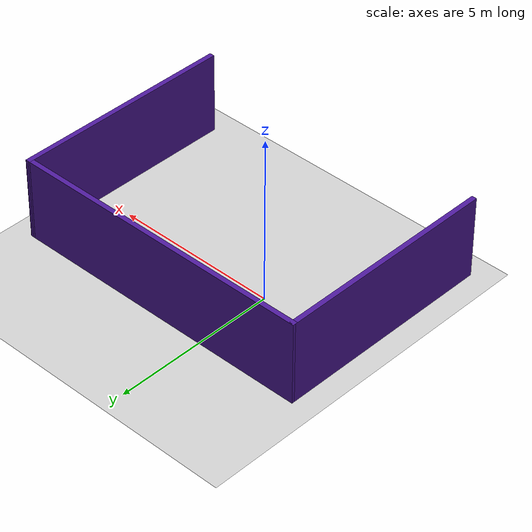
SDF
<sdf version="1.6">
 <world name="default">
  <light name="sun" type="directional">
   <pose>0 0 10 0 -0 0</pose>
   <diffuse>0.8 0.8 0.8 1</diffuse>
   <specular>0.2 0.2 0.2 1</specular>
   <attenuation>
    <range>1000</range>
    <constant>0.9</constant>
    <linear>0.01</linear>
    <quadratic>0.001</quadratic>
   </attenuation>
   <direction>-0.5 0.1 -0.9</direction>
  </light>
  <model name="ground_plane">
   <static>1</static>
   <link name="link">
    <collision name="collision">
     <geometry><plane><normal>0 0 1</normal><size>100 100</size></plane></geometry>
     <surface><friction><ode><mu>100</mu><mu2>50</mu2></ode></friction></surface>
    </collision>
    <visual name="visual">
     <cast_shadows>0</cast_shadows>
     <geometry><plane><normal>0 0 1</normal><size>100 100</size></plane></geometry>
     <material>
      <script><uri>file://media/materials/scripts/gazebo.material</uri><name>Gazebo/Grey</name></script>
     </material>
    </visual>
   </link>
  </model>
  <gravity>0 0 -9.8</gravity>
  <magnetic_field>6e-06 2.3e-05 -4.2e-05</magnetic_field>
  <atmosphere type="adiabatic"/>
  <physics name="default_physics" default="0" type="ode">
   <max_step_size>0.001</max_step_size>
   <real_time_factor>1</real_time_factor>
   <real_time_update_rate>1000</real_time_update_rate>
  </physics>
  <scene><ambient>0.4 0.4 0.4 1</ambient><background>0.7 0.7 0.7 1</background><shadows>1</shadows></scene>
  <spherical_coordinates>
   <surface_model>EARTH_WGS84</surface_model>
   <latitude_deg>0</latitude_deg>
   <longitude_deg>0</longitude_deg>
   <elevation>0</elevation>
   <heading_deg>0</heading_deg>
  </spherical_coordinates>
  <audio><device>default</device></audio>
  <model name="ARM">
   <pose>1.52581 -0.99886 0 0 -0 0</pose>
   <link name="Wall_0">
    <collision name="Wall_0_Collision">
     <geometry><box><size>9.38216 0.15 2.5</size></box></geometry>
     <pose>0 0 1.25 0 -0 0</pose>
    </collision>
    <visual name="Wall_0_Visual">
     <pose>0 0 1.25 0 -0 0</pose>
     <geometry><box><size>9.38216 0.15 2.5</size></box></geometry>
     <material>
      <script><uri>file://media/materials/scripts/gazebo.material</uri><name>Gazebo/Indigo</name></script>
      <ambient>1 1 1 1</ambient>
     </material>
     <meta><layer>0</layer></meta>
    </visual>
    <pose>-0.007481 3.30748 0 0 -0 -3.1383</pose>
   </link>
   <link name="Wall_1">
    <collision name="Wall_1_Collision">
     <geometry><box><size>6.75 0.15 2.5</size></box></geometry>
     <pose>0 0 1.25 0 -0 0</pose>
    </collision>
    <visual name="Wall_1_Visual">
     <pose>0 0 1.25 0 -0 0</pose>
     <geometry><box><size>6.75 0.15 2.5</size></box></geometry>
     <material>
      <script><uri>file://media/materials/scripts/gazebo.material</uri><name>Gazebo/Indigo</name></script>
      <ambient>1 1 1 1</ambient>
     </material>
     <meta><layer>0</layer></meta>
    </visual>
    <pose>-4.62354 -0.022936 0 0 -0 -1.5708</pose>
   </link>
   <link name="Wall_3">
    <collision name="Wall_3_Collision">
     <geometry><box><size>6.75 0.15 2.5</size></box></geometry>
     <pose>0 0 1.25 0 -0 0</pose>
    </collision>
    <visual name="Wall_3_Visual">
     <pose>0 0 1.25 0 -0 0</pose>
     <geometry><box><size>6.75 0.15 2.5</size></box></geometry>
     <material>
      <script><uri>file://media/materials/scripts/gazebo.material</uri><name>Gazebo/Indigo</name></script>
      <ambient>1 1 1 1</ambient>
     </material>
     <meta><layer>0</layer></meta>
    </visual>
    <pose>4.62378 0.02269 0 0 -0 1.5708</pose>
   </link>
   <static>1</static>
  </model>
  <light name="user_directional_light_0" type="directional">
   <pose>1.63955 -2.20532 1 0 -0 0</pose>
   <diffuse>0.5 0.5 0.5 1</diffuse>
   <specular>0.1 0.1 0.1 1</specular>
   <direction>0.1 0.1 -0.9</direction>
   <attenuation>
    <range>20</range>
    <constant>0.5</constant>
    <linear>0.01</linear>
    <quadratic>0.001</quadratic>
   </attenuation>
  </light>
  <light name="user_directional_light_1" type="directional">
   <pose>-2.359 -0.528604 1 0 -0 0</pose>
   <diffuse>0.5 0.5 0.5 1</diffuse>
   <specular>0.1 0.1 0.1 1</specular>
   <direction>0.1 0.1 -0.9</direction>
   <attenuation>
    <range>20</range>
    <constant>0.5</constant>
    <linear>0.01</linear>
    <quadratic>0.001</quadratic>
   </attenuation>
  </light>
  <light name="user_directional_light_2" type="directional">
   <pose>4.86836 0.772697 1 0 -0 0</pose>
   <diffuse>0.5 0.5 0.5 1</diffuse>
   <specular>0.1 0.1 0.1 1</specular>
   <direction>0.1 0.1 -0.9</direction>
   <attenuation>
    <range>20</range>
    <constant>0.5</constant>
    <linear>0.01</linear>
    <quadratic>0.001</quadratic>
   </attenuation>
  </light>
  <light name="user_directional_light_3" type="directional">
   <pose>-1.01637 1.49901 1 0 -0 0</pose>
   <diffuse>0.5 0.5 0.5 1</diffuse>
   <specular>0.1 0.1 0.1 1</specular>
   <direction>0.1 0.1 -0.9</direction>
   <attenuation>
    <range>20</range>
    <constant>0.5</constant>
    <linear>0.01</linear>
    <quadratic>0.001</quadratic>
   </attenuation>
  </light>
  <light name="user_spot_light_0" type="spot">
   <pose>1.71192 1.00444 1 0 -0 0</pose>
   <diffuse>0.5 0.5 0.5 1</diffuse>
   <specular>0.1 0.1 0.1 1</specular>
   <direction>0 0 -1</direction>
   <attenuation>
    <range>20</range>
    <constant>0.5</constant>
    <linear>0.01</linear>
    <quadratic>0.001</quadratic>
   </attenuation>
   <cast_shadows>0</cast_shadows>
   <spot><inner_angle>0.6</inner_angle><outer_angle>1</outer_angle><falloff>1</falloff></spot>
  </light>
  <light name="user_point_light_0" type="point">
   <pose>-1.62354 -2.1441 1 0 -0 0</pose>
   <diffuse>0.5 0.5 0.5 1</diffuse>
   <specular>0.1 0.1 0.1 1</specular>
   <attenuation>
    <range>20</range>
    <constant>0.5</constant>
    <linear>0.01</linear>
    <quadratic>0.001</quadratic>
   </attenuation>
   <cast_shadows>0</cast_shadows>
   <direction>0 0 -1</direction>
  </light>
  <model name="cabinet">
   <model name="cabinet">
    <static>1</static>
    <link name="cabinet_bottom_plate">
     <inertial>
      <pose>0 0 -1 0 -0 0</pose>
      <inertia><ixx>2.05</ixx><ixy>0</ixy><ixz>0</ixz><iyy>2.05</iyy><iyz>0</iyz><izz>2.05</izz></inertia>
      <mass>25</mass>
     </inertial>
     <collision name="cabinet_bottom_plate_geom">
      <pose>0 0 0.01 0 -0 0</pose>
      <geometry><box><size>0.45 0.45 0.02</size></box></geometry>
     </collision>
     <visual name="cabinet_bottom_plate_geom_visual">
      <pose>0 0 0.01 0 -0 0</pose>
      <geometry><box><size>0.45 0.45 0.02</size></box></geometry>
      <material>
       <script><uri>file://media/materials/scripts/gazebo.material</uri><name>Gazebo/Wood</name></script>
      </material>
     </visual>
     <collision name="cabinet_bottom_plate_geom_cabinet_back_plate">
      <pose>0.235 0 0.51 0 -0 0</pose>
      <geometry><box><size>0.02 0.45 1.02</size></box></geometry>
     </collision>
     <visual name="cabinet_bottom_plate_geom_cabinet_back_plate_visual">
      <pose>0.235 0 0.51 0 -0 0</pose>
      <geometry><box><size>0.02 0.45 1.02</size></box></geometry>
      <material>
       <script><uri>file://media/materials/scripts/gazebo.material</uri><name>Gazebo/Wood</name></script>
      </material>
     </visual>
     <collision name="cabinet_bottom_plate_geom_cabinet_left_plate">
      <pose>0 0.235 0.51 0 -0 0</pose>
      <geometry><box><size>0.45 0.02 1.02</size></box></geometry>
     </collision>
     <visual name="cabinet_bottom_plate_geom_cabinet_left_plate_visual">
      <pose>0 0.235 0.51 0 -0 0</pose>
      <geometry><box><size>0.45 0.02 1.02</size></box></geometry>
      <material>
       <script><uri>file://media/materials/scripts/gazebo.material</uri><name>Gazebo/Wood</name></script>
      </material>
     </visual>
     <collision name="cabinet_bottom_plate_geom_cabinet_middle_plate">
      <pose>0 0 0.51 0 -0 0</pose>
      <geometry><box><size>0.45 0.45 0.02</size></box></geometry>
     </collision>
     <visual name="cabinet_bottom_plate_geom_cabinet_middle_plate_visual">
      <pose>0 0 0.51 0 -0 0</pose>
      <geometry><box><size>0.45 0.45 0.02</size></box></geometry>
      <material>
       <script><uri>file://media/materials/scripts/gazebo.material</uri><name>Gazebo/Wood</name></script>
      </material>
     </visual>
     <collision name="cabinet_bottom_plate_geom_cabinet_right_plate">
      <pose>0 -0.235 0.51 0 -0 0</pose>
      <geometry><box><size>0.45 0.02 1.02</size></box></geometry>
     </collision>
     <visual name="cabinet_bottom_plate_geom_cabinet_right_plate_visual">
      <pose>0 -0.235 0.51 0 -0 0</pose>
      <geometry><box><size>0.45 0.02 1.02</size></box></geometry>
      <material>
       <script><uri>file://media/materials/scripts/gazebo.material</uri><name>Gazebo/Wood</name></script>
      </material>
     </visual>
     <collision name="cabinet_bottom_plate_geom_cabinet_top_plate">
      <pose>0 0 1.01 0 -0 0</pose>
      <geometry><box><size>0.45 0.45 0.02</size></box></geometry>
     </collision>
     <visual name="cabinet_bottom_plate_geom_cabinet_top_plate_visual">
      <pose>0 0 1.01 0 -0 0</pose>
      <geometry><box><size>0.45 0.45 0.02</size></box></geometry>
      <material>
       <script><uri>file://media/materials/scripts/gazebo.material</uri><name>Gazebo/Wood</name></script>
      </material>
     </visual>
    </link>
    <pose>-2e-06 1e-06 0 0 -0 0</pose>
   </model>
   <static>0</static>
   <pose>5.50732 1.24958 0 0 -0 1.61073</pose>
  </model>
 </world>
</sdf>
